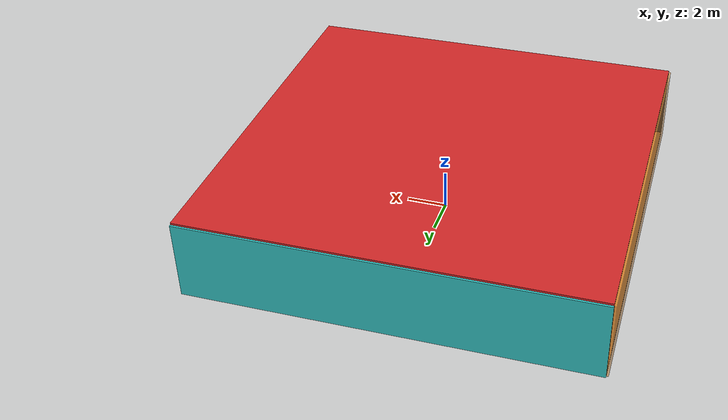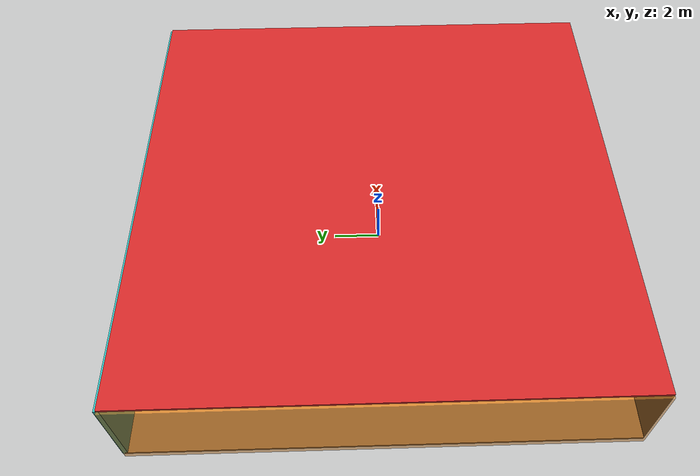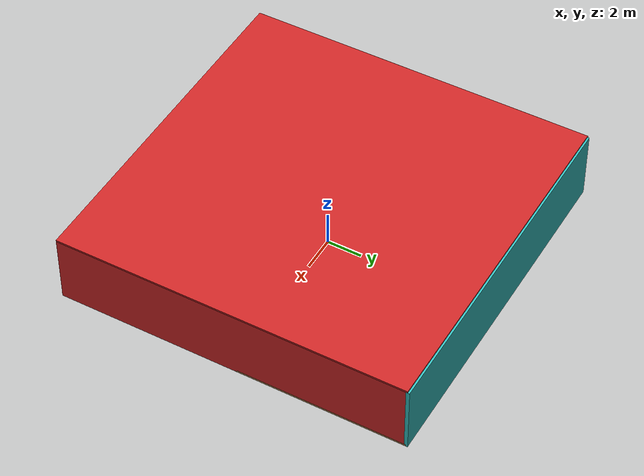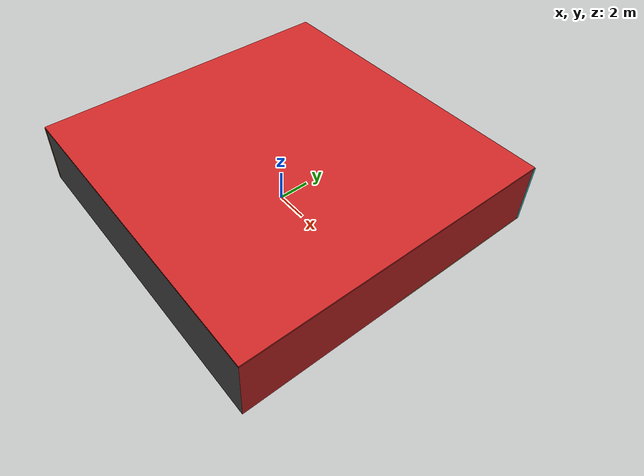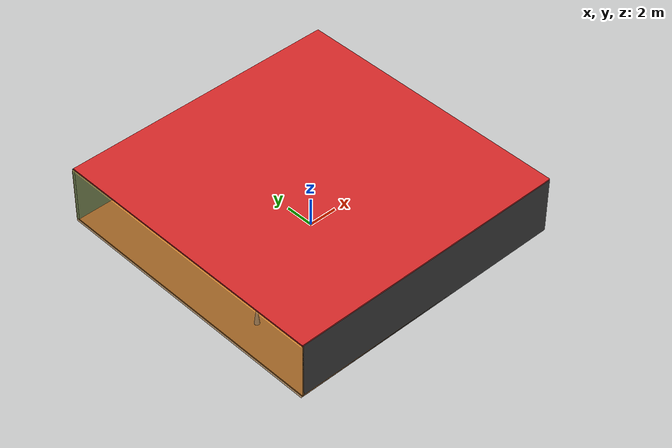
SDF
<sdf version="1.4">
 <world name="default">
  <physics type="ode">
   <max_step_size>0.001</max_step_size>
   <real_time_factor>1</real_time_factor>
   <real_time_update_rate>1000</real_time_update_rate>
   <gravity>0 0 -9.8</gravity>
  </physics>
  <scene><ambient>0.4 0.4 0.4 1</ambient><background>0.7 0.7 0.7 1</background><shadows>1</shadows></scene>
  <model name="Surrounding">
   <static>1</static>
   <link name="Ceiling">
    <collision name="Ceiling_Collision"><geometry><box><size>20 20 0.1</size></box></geometry></collision>
    <visual name="Ceiling_Visual">
     <geometry><box><size>20 20 0.1</size></box></geometry>
     <material>
      <script><uri>file://media/materials/scripts/gazebo.material</uri><name>Gazebo/RedBright</name></script>
     </material>
    </visual>
    <pose>0 0 4.05 0 0 0</pose>
   </link>
   <link name="Wall_South">
    <collision name="Wall_South_Collision">
     <geometry><box><size>20 0 4</size></box></geometry>
     <pose>0 0 2 0 -0 0</pose>
    </collision>
    <visual name="Wall_South_Visual">
     <pose>0 0 2 0 -0 0</pose>
     <geometry><box><size>20 0 4</size></box></geometry>
     <material>
      <script><uri>file://media/materials/scripts/gazebo.material</uri><name>Gazebo/Road</name></script>
     </material>
    </visual>
    <velocity_decay><linear>0</linear><angular>0</angular></velocity_decay>
    <pose>0 -10 0 0 -0 0</pose>
   </link>
   <link name="Wall_East">
    <collision name="Wall_21_Collision">
     <geometry><box><size>20 0 4</size></box></geometry>
     <pose>0 0 2 0 -0 0</pose>
    </collision>
    <visual name="Wall_21_Visual">
     <pose>0 0 2 0 -0 0</pose>
     <geometry><box><size>20 0 4</size></box></geometry>
     <material>
      <script><uri>file://media/materials/scripts/gazebo.material</uri><name>Gazebo/Red</name></script>
     </material>
    </visual>
    <velocity_decay><linear>0</linear><angular>0</angular></velocity_decay>
    <pose>10 0 0 0 -0 1.5708</pose>
   </link>
   <link name="Wall_North">
    <collision name="Wall_22_Collision">
     <geometry><box><size>20 0.2 4</size></box></geometry>
     <pose>0 0 2 0 -0 0</pose>
    </collision>
    <visual name="Wall_22_Visual">
     <pose>0 0 2 0 -0 0</pose>
     <geometry><box><size>20 0.2 4</size></box></geometry>
     <material>
      <script><uri>file://media/materials/scripts/gazebo.material</uri><name>Gazebo/TurquoiseGlow</name></script>
     </material>
    </visual>
    <velocity_decay><linear>0</linear><angular>0</angular></velocity_decay>
    <pose>0 10 0 0 -0 0</pose>
   </link>
   <link name="Wall_West">
    <collision name="Wall_23_Collision">
     <geometry><box><size>20 0.2 4</size></box></geometry>
     <pose>0 0 2 0 -0 0</pose>
    </collision>
    <visual name="Wall_23_Visual">
     <pose>0 0 2 0 -0 0</pose>
     <geometry><box><size>20 0.2 4</size></box></geometry>
     <material>
      <script>
       <uri>file://media/materials/scripts/gazebo.material</uri>
       <name>Gazebo/OrangeTransparent</name>
      </script>
     </material>
    </visual>
    <velocity_decay><linear>0</linear><angular>0</angular></velocity_decay>
    <pose>-10 0 0 0 0 -1.5708</pose>
   </link>
   <link name="Ground_link">
    <collision name="collision">
     <pose>0 0 .05 0 -0 0</pose>
     <geometry><box><size>20 20 0.1</size></box></geometry>
    </collision>
    <visual name="visual">
     <pose>0 0 .05 0 -0 0</pose>
     <geometry><box><size>20 20 0.1</size></box></geometry>
     <material>
      <script><uri>file://media/materials/scripts/gazebo.material</uri><name>Gazebo/WoodFloor</name></script>
     </material>
    </visual>
   </link>
   <static>1</static>
  </model>
  <spherical_coordinates>
   <surface_model>EARTH_WGS84</surface_model>
   <latitude_deg>0</latitude_deg>
   <longitude_deg>0</longitude_deg>
   <elevation>0</elevation>
   <heading_deg>0</heading_deg>
  </spherical_coordinates>
  <light name="lightball_0" type="diffuse">
   <diffuse>0.8 0.8 0.8 1</diffuse>
   <specular>0.2 0.2 0.2 1</specular>
   <attenuation>
    <range>100</range>
    <constant>0.7</constant>
    <linear>0.01</linear>
    <quadratic>0.001</quadratic>
   </attenuation>
   <direction>-0.5 0.1 -0.9</direction>
   <pose>4.42170508515 -7.15668334484 1.85334074489 0 0 0</pose>
  </light>
  <light name="lightball_1" type="diffuse">
   <diffuse>0.8 0.8 0.8 1</diffuse>
   <specular>0.2 0.2 0.2 1</specular>
   <attenuation>
    <range>100</range>
    <constant>0.7</constant>
    <linear>0.01</linear>
    <quadratic>0.001</quadratic>
   </attenuation>
   <direction>-0.5 0.1 -0.9</direction>
   <pose>6.82996722274 -6.86463198756 1.08349639259 0 0 0</pose>
  </light>
  <light name="lightball_2" type="diffuse">
   <diffuse>0.8 0.8 0.8 1</diffuse>
   <specular>0.2 0.2 0.2 1</specular>
   <attenuation>
    <range>100</range>
    <constant>0.7</constant>
    <linear>0.01</linear>
    <quadratic>0.001</quadratic>
   </attenuation>
   <direction>-0.5 0.1 -0.9</direction>
   <pose>-9.09743547104 3.17185064942 2.18860088589 0 0 0</pose>
  </light>
  <light name="lightball_3" type="diffuse">
   <diffuse>0.8 0.8 0.8 1</diffuse>
   <specular>0.2 0.2 0.2 1</specular>
   <attenuation>
    <range>100</range>
    <constant>0.7</constant>
    <linear>0.01</linear>
    <quadratic>0.001</quadratic>
   </attenuation>
   <direction>-0.5 0.1 -0.9</direction>
   <pose>3.1580051111 0.900792661544 1.95018269176 0 0 0</pose>
  </light>
  <light name="lightball_4" type="diffuse">
   <diffuse>0.8 0.8 0.8 1</diffuse>
   <specular>0.2 0.2 0.2 1</specular>
   <attenuation>
    <range>100</range>
    <constant>0.7</constant>
    <linear>0.01</linear>
    <quadratic>0.001</quadratic>
   </attenuation>
   <direction>-0.5 0.1 -0.9</direction>
   <pose>1.90648664646 -3.33186053312 1.33628895608 0 0 0</pose>
  </light>
  <light name="lightball_5" type="diffuse">
   <diffuse>0.8 0.8 0.8 1</diffuse>
   <specular>0.2 0.2 0.2 1</specular>
   <attenuation>
    <range>100</range>
    <constant>0.7</constant>
    <linear>0.01</linear>
    <quadratic>0.001</quadratic>
   </attenuation>
   <direction>-0.5 0.1 -0.9</direction>
   <pose>-8.79081328815 3.21209119369 1.02045965852 0 0 0</pose>
  </light>
  <light name="lightball_6" type="diffuse">
   <diffuse>0.8 0.8 0.8 1</diffuse>
   <specular>0.2 0.2 0.2 1</specular>
   <attenuation>
    <range>100</range>
    <constant>0.7</constant>
    <linear>0.01</linear>
    <quadratic>0.001</quadratic>
   </attenuation>
   <direction>-0.5 0.1 -0.9</direction>
   <pose>-5.79035349661 -5.02768556124 1.50803555469 0 0 0</pose>
  </light>
  <light name="lightball_7" type="diffuse">
   <diffuse>0.8 0.8 0.8 1</diffuse>
   <specular>0.2 0.2 0.2 1</specular>
   <attenuation>
    <range>100</range>
    <constant>0.7</constant>
    <linear>0.01</linear>
    <quadratic>0.001</quadratic>
   </attenuation>
   <direction>-0.5 0.1 -0.9</direction>
   <pose>0.672475016977 -1.55930405798 1.41217216055 0 0 0</pose>
  </light>
  <light name="lightball_8" type="diffuse">
   <diffuse>0.8 0.8 0.8 1</diffuse>
   <specular>0.2 0.2 0.2 1</specular>
   <attenuation>
    <range>100</range>
    <constant>0.7</constant>
    <linear>0.01</linear>
    <quadratic>0.001</quadratic>
   </attenuation>
   <direction>-0.5 0.1 -0.9</direction>
   <pose>8.11084772187 -8.11875498318 2.94044997716 0 0 0</pose>
  </light>
  <light name="lightball_9" type="diffuse">
   <diffuse>0.8 0.8 0.8 1</diffuse>
   <specular>0.2 0.2 0.2 1</specular>
   <attenuation>
    <range>100</range>
    <constant>0.7</constant>
    <linear>0.01</linear>
    <quadratic>0.001</quadratic>
   </attenuation>
   <direction>-0.5 0.1 -0.9</direction>
   <pose>-2.07063308726 -2.59863518923 3.45381164083 0 0 0</pose>
  </light>
  <include>
   <uri>model://construction_cone</uri>
   <pose>-8.05539561074 -4.07416446916 0 0 0 0.199311334117</pose>
  </include>
  <include>
   <uri>model://robocup_3Dsim_goal</uri>
   <pose>-0.99151090642 -4.78835081299 0 0 0 2.27296426278</pose>
  </include>
  <include>
   <uri>model://construction_cone</uri>
   <pose>-2.12572198685 5.2710153536 0 0 0 2.14529488853</pose>
  </include>
  <include>
   <uri>model://construction_cone</uri>
   <pose>1.15874587483 -4.15844965054 0 0 0 3.10576997229</pose>
  </include>
  <include><uri>model://table</uri><pose>1.25238907766 4.04500117823 0 0 0 0.205513994992</pose></include>
  <include><uri>model://cabinet</uri><pose>4.85428284928 7.74249943267 0 0 0 2.64918698378</pose></include>
  <include>
   <uri>model://robocup_3Dsim_goal</uri>
   <pose>7.44077742364 -1.64837885379 0 0 0 1.8380046117</pose>
  </include>
 </world>
</sdf>

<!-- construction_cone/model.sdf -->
<sdf version="1.5">
  <model name="Construction Cone">
    <link name="link">
      <collision name="collision">
        <geometry>
          <mesh>
            <scale>10 10 10</scale>
            <uri>file://isr-testbed/construction_cone/meshes/construction_cone.dae</uri>
          </mesh>
        </geometry>
      </collision>
      <visual name="visual">
        <geometry>
          <mesh>
            <scale>10 10 10</scale>
            <uri>file://isr-testbed/construction_cone/meshes/construction_cone.dae</uri>
          </mesh>
        </geometry>
      </visual>
    </link>
  </model>
</sdf>

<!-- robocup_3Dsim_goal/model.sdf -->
<sdf version="1.5">
  <model name="robocup_3d_goal">
    <static>true</static>
    <link name="left_post">
      <pose>0 1.05 0.45 0 0 0</pose>
      <collision name="collision">
        <geometry>
          <cylinder>
            <radius>0.05</radius>
            <length>0.9</length>
          </cylinder>
        </geometry>
      </collision>
      <visual name="visual">
        <geometry>
          <cylinder>
            <radius>0.05</radius>
            <length>0.9</length>
          </cylinder>
        </geometry>
        <material>
          <script>
            <uri>file://media/materials/scripts/gazebo.material</uri>
            <name>Gazebo/ZincYellow</name>
          </script>
        </material>
      </visual>
    </link>
    <link name="left_support_horiz_lower">
      <pose>0.30 1.05 0.01 0 0 0</pose>
      <collision name="collision">
        <geometry>
          <box>
            <size>0.50 0.02 0.02</size>
          </box>
        </geometry>
      </collision>
      <visual name="visual">
        <geometry>
          <box>
            <size>0.50 0.02 0.02</size>
          </box>
        </geometry>
        <material>
          <script>
            <uri>file://media/materials/scripts/gazebo.material</uri>
            <name>Gazebo/White</name>
          </script>
        </material>
      </visual>
    </link>
    <link name="left_support_horiz_upper">
      <pose>0.30 1.05 0.79 0 0 0</pose>
      <collision name="collision">
        <geometry>
          <box>
            <size>0.50 0.02 0.02</size>
          </box>
        </geometry>
      </collision>
      <visual name="visual">
        <geometry>
          <box>
            <size>0.50 0.02 0.02</size>
          </box>
        </geometry>
        <material>
          <script>
            <uri>file://media/materials/scripts/gazebo.material</uri>
            <name>Gazebo/White</name>
          </script>
        </material>
      </visual>
    </link>
    <link name="left_support_vertical">
      <pose>0.56 1.05 0.4 0 1.5708 0</pose>
      <collision name="collision">
        <geometry>
          <box>
            <size>0.80 0.02 0.02</size>
          </box>
        </geometry>
      </collision>
      <visual name="visual">
        <geometry>
          <box>
            <size>0.80 0.02 0.02</size>
          </box>
        </geometry>
        <material>
          <script>
            <uri>file://media/materials/scripts/gazebo.material</uri>
            <name>Gazebo/White</name>
          </script>
        </material>
      </visual>
    </link>
    <link name="right_support_horiz_lower">
      <pose>0.30 -1.05 0.01 0 0 0</pose>
      <collision name="collision">
        <geometry>
          <box>
            <size>0.50 0.02 0.02</size>
          </box>
        </geometry>
      </collision>
      <visual name="visual">
        <geometry>
          <box>
            <size>0.50 0.02 0.02</size>
          </box>
        </geometry>
        <material>
          <script>
            <uri>file://media/materials/scripts/gazebo.material</uri>
            <name>Gazebo/White</name>
          </script>
        </material>
      </visual>
    </link>
    <link name="right_support_horiz_upper">
      <pose>0.30 -1.05 0.79 0 0 0</pose>
      <collision name="collision">
        <geometry>
          <box>
            <size>0.50 0.02 0.02</size>
          </box>
        </geometry>
      </collision>
      <visual name="visual">
        <geometry>
          <box>
            <size>0.50 0.02 0.02</size>
          </box>
        </geometry>
        <material>
          <script>
            <uri>file://media/materials/scripts/gazebo.material</uri>
            <name>Gazebo/White</name>
          </script>
        </material>
      </visual>
    </link>
    <link name="right_support_vertical">
      <pose>0.56 -1.05 0.4 0 1.5708 0</pose>
      <collision name="collision">
        <geometry>
          <box>
            <size>0.80 0.02 0.02</size>
          </box>
        </geometry>
      </collision>
      <visual name="visual">
        <geometry>
          <box>
            <size>0.80 0.02 0.02</size>
          </box>
        </geometry>
        <material>
          <script>
            <uri>file://media/materials/scripts/gazebo.material</uri>
            <name>Gazebo/White</name>
          </script>
        </material>
      </visual>
    </link>
    <link name="center_support_horiz_lower">
      <pose>0.56 0 0.01 0 1.5708 0</pose>
      <collision name="collision">
        <geometry>
          <box>
            <size>0.02 2.08 0.02</size>
          </box>
        </geometry>
      </collision>
      <visual name="visual">
        <geometry>
          <box>
            <size>0.02 2.08 0.02</size>
          </box>
        </geometry>
        <material>
          <script>
            <uri>file://media/materials/scripts/gazebo.material</uri>
            <name>Gazebo/White</name>
          </script>
        </material>
      </visual>
    </link>
    <link name="center_support_horiz_upper">
      <pose>0.56 0 0.79 0 1.5708 0</pose>
      <collision name="collision">
        <geometry>
          <box>
            <size>0.02 2.08 0.02</size>
          </box>
        </geometry>
      </collision>
      <visual name="visual">
        <geometry>
          <box>
            <size>0.02 2.08 0.02</size>
          </box>
        </geometry>
        <material>
          <script>
            <uri>file://media/materials/scripts/gazebo.material</uri>
            <name>Gazebo/White</name>
          </script>
        </material>
      </visual>
    </link>
    <link name="right_post">
      <pose>0 -1.05 0.45 0 0 0</pose>
      <collision name="collision">
        <geometry>
          <cylinder>
            <radius>0.05</radius>
            <length>0.9</length>
          </cylinder>
        </geometry>
      </collision>
      <visual name="visual">
        <geometry>
          <cylinder>
            <radius>0.05</radius>
            <length>0.9</length>
          </cylinder>
        </geometry>
        <material>
          <script>
            <uri>file://media/materials/scripts/gazebo.material</uri>
            <name>Gazebo/ZincYellow</name>
          </script>
        </material>
      </visual>
    </link>
    <link name="crossbar">
      <pose>0 0 0.85 1.57 1.57 0</pose>
      <collision name="collision">
        <geometry>
          <cylinder>
            <radius>0.05</radius>
            <length>2.0</length>
          </cylinder>
        </geometry>
      </collision>
      <visual name="visual">
        <geometry>
          <cylinder>
            <radius>0.05</radius>
            <length>2.0</length>
          </cylinder>
        </geometry>
        <material>
          <script>
            <uri>file://media/materials/scripts/gazebo.material</uri>
            <name>Gazebo/ZincYellow</name>
          </script>
        </material>
      </visual>
    </link>
    <link name="center_net">
      <pose>0.56 0 0.40 0 0 0</pose>
      <collision name="collision">
        <geometry>
          <box>
            <size>0.01 2.1 0.80</size>
          </box>
        </geometry>
      </collision>
      <visual name="visual">
        <geometry>
          <box>
            <size>0.01 2.1 0.80</size>
          </box>
        </geometry>
        <material>
          <script>
            <uri>model://../model_source/models/robocup09_spl_field/materials/scripts/</uri>
            <uri>model://../model_source/models/robocup09_spl_field/materials/textures/</uri>
            <name>RoboCup/Net</name>
          </script>
        </material>
      </visual>
    </link>
    <link name="left_net">
      <pose>0.30 1.05 0.40 0 0 0</pose>
      <collision name="collision">
        <geometry>
          <box>
            <size>0.50 0.01 0.76</size>
          </box>
        </geometry>
      </collision>
      <visual name="visual">
        <geometry>
          <box>
            <size>0.50 0.01 0.76</size>
          </box>
        </geometry>
        <material>
          <script>
            <uri>model://../model_source/models/robocup09_spl_field/materials/scripts/</uri>
            <uri>model://../model_source/models/robocup09_spl_field/materials/textures/</uri>
            <name>RoboCup/Net</name>
          </script>
        </material>
      </visual>
    </link>
    <link name="right_net">
      <pose>0.30 -1.05 0.40 0 0 0</pose>
      <collision name="collision">
        <geometry>
          <box>
            <size>0.50 0.01 0.76</size>
          </box>
        </geometry>
      </collision>
      <visual name="visual">
        <geometry>
          <box>
            <size>0.50 0.01 0.76</size>
          </box>
        </geometry>
        <material>
          <script>
            <uri>model://../model_source/models/robocup09_spl_field/materials/scripts/</uri>
            <uri>model://../model_source/models/robocup09_spl_field/materials/textures/</uri>
            <name>RoboCup/Net</name>
          </script>
        </material>
      </visual>
    </link>
  </model>
</sdf>

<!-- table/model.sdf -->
<sdf version="1.5">
  <model name="table">
    <static>true</static>
    <link name="link">
      <collision name="surface">
        <pose>0 0 1.0 0 0 0</pose>
        <geometry>
          <box>
            <size>1.5 0.8 0.03</size>
          </box>
        </geometry>
        <surface>
          <friction>
            <ode>
              <mu>0.6</mu>
              <mu2>0.6</mu2>
            </ode>
          </friction>
        </surface>
      </collision>
      <visual name="visual1">
        <pose>0 0 1.0 0 0 0</pose>
        <geometry>
          <box>
            <size>1.5 0.8 0.03</size>
          </box>
        </geometry>
        <material>
          <script>
            <uri>model://media/materials/scripts/gazebo.material</uri>
            <name>Gazebo/Wood</name>
          </script>
        </material>
      </visual>
      <collision name="front_left_leg">
        <pose>0.68 0.38 0.5 0 0 0</pose>
        <geometry>
          <cylinder>
            <radius>0.02</radius>
            <length>1.0</length>
          </cylinder>
        </geometry>
      </collision>
      <visual name="front_left_leg">
        <pose>0.68 0.38 0.5 0 0 0</pose>
        <geometry>
          <cylinder>
            <radius>0.02</radius>
            <length>1.0</length>
          </cylinder>
        </geometry>
        <material>
          <script>
            <uri>model://media/materials/scripts/gazebo.material</uri>
            <name>Gazebo/Grey</name>
          </script>
        </material>
      </visual>
      <collision name="front_right_leg">
        <pose>0.68 -0.38 0.5 0 0 0</pose>
        <geometry>
          <cylinder>
            <radius>0.02</radius>
            <length>1.0</length>
          </cylinder>
        </geometry>
      </collision>
      <visual name="front_right_leg">
        <pose>0.68 -0.38 0.5 0 0 0</pose>
        <geometry>
          <cylinder>
            <radius>0.02</radius>
            <length>1.0</length>
          </cylinder>
        </geometry>
        <material>
          <script>
            <uri>model://media/materials/scripts/gazebo.material</uri>
            <name>Gazebo/Grey</name>
          </script>
        </material>
      </visual>
      <collision name="back_right_leg">
        <pose>-0.68 -0.38 0.5 0 0 0</pose>
        <geometry>
          <cylinder>
            <radius>0.02</radius>
            <length>1.0</length>
          </cylinder>
        </geometry>
      </collision>
      <visual name="back_right_leg">
        <pose>-0.68 -0.38 0.5 0 0 0</pose>
        <geometry>
          <cylinder>
            <radius>0.02</radius>
            <length>1.0</length>
          </cylinder>
        </geometry>
        <material>
          <script>
            <uri>model://media/materials/scripts/gazebo.material</uri>
            <name>Gazebo/Grey</name>
          </script>
        </material>
      </visual>
      <collision name="back_left_leg">
        <pose>-0.68 0.38 0.5 0 0 0</pose>
        <geometry>
          <cylinder>
            <radius>0.02</radius>
            <length>1.0</length>
          </cylinder>
        </geometry>
      </collision>
      <visual name="back_left_leg">
        <pose>-0.68 0.38 0.5 0 0 0</pose>
        <geometry>
          <cylinder>
            <radius>0.02</radius>
            <length>1.0</length>
          </cylinder>
        </geometry>
        <material>
          <script>
            <uri>model://media/materials/scripts/gazebo.material</uri>
            <name>Gazebo/Grey</name>
          </script>
        </material>
      </visual>
    </link>
  </model>
</sdf>

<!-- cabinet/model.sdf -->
<sdf version="1.5">
  <model name="cabinet">
    <static>true</static>
    <link name="cabinet_bottom_plate">
      <inertial>
        <pose>0 0 -1 0 0 0</pose>
        <inertia>
          <ixx>2.050000</ixx>
          <ixy>0</ixy>
          <ixz>0</ixz>
          <iyy>2.050000</iyy>
          <iyz>0</iyz>
          <izz>2.050000</izz>
        </inertia>
        <mass>25.000000</mass>
      </inertial>
      <collision name="cabinet_bottom_plate_geom">
        <pose>0 0 0.010000 0 0 0</pose>
        <geometry>
          <box>
            <size>0.450000 0.450000 0.020000</size>
          </box>
        </geometry>
      </collision>
      <visual name="cabinet_bottom_plate_geom_visual">
        <pose>0 0 0.010000 0 0 0</pose>
        <geometry>
          <box>
            <size>0.450000 0.450000 0.020000</size>
          </box>
        </geometry>
        <material>
          <script>
            <uri>model://media/materials/scripts/gazebo.material</uri>
            <name>Gazebo/Wood</name>
          </script>
        </material>
      </visual>
      <collision name="cabinet_bottom_plate_geom_cabinet_back_plate">
        <pose>0.235000 0 0.510000 0 0 0</pose>
        <geometry>
          <box>
            <size>0.020000 0.450000 1.020000</size>
          </box>
        </geometry>
      </collision>
      <visual name="cabinet_bottom_plate_geom_cabinet_back_plate_visual">
        <pose>0.235000 0 0.510000 0 0 0</pose>
        <geometry>
          <box>
            <size>0.020000 0.450000 1.020000</size>
          </box>
        </geometry>
        <material>
          <script>
            <uri>model://media/materials/scripts/gazebo.material</uri>
            <name>Gazebo/Wood</name>
          </script>
        </material>
      </visual>
      <collision name="cabinet_bottom_plate_geom_cabinet_left_plate">
        <pose>0 0.235000 0.510000 0 0 0</pose>
        <geometry>
          <box>
            <size>0.450000 0.020000 1.020000</size>
          </box>
        </geometry>
      </collision>
      <visual name="cabinet_bottom_plate_geom_cabinet_left_plate_visual">
        <pose>0 0.235000 0.510000 0 0 0</pose>
        <geometry>
          <box>
            <size>0.450000 0.020000 1.020000</size>
          </box>
        </geometry>
        <material>
          <script>
            <uri>model://media/materials/scripts/gazebo.material</uri>
            <name>Gazebo/Wood</name>
          </script>
        </material>
      </visual>
      <collision name="cabinet_bottom_plate_geom_cabinet_middle_plate">
        <pose>0 0 0.510000 0 0 0</pose>
        <geometry>
          <box>
            <size>0.450000 0.450000 0.020000</size>
          </box>
        </geometry>
      </collision>
      <visual name="cabinet_bottom_plate_geom_cabinet_middle_plate_visual">
        <pose>0 0 0.510000 0 0 0</pose>
        <geometry>
          <box>
            <size>0.450000 0.450000 0.020000</size>
          </box>
        </geometry>
        <material>
          <script>
            <uri>model://media/materials/scripts/gazebo.material</uri>
            <name>Gazebo/Wood</name>
          </script>
        </material>
      </visual>
      <collision name="cabinet_bottom_plate_geom_cabinet_right_plate">
        <pose>0 -0.235000 0.510000 0 0 0</pose>
        <geometry>
          <box>
            <size>0.450000 0.020000 1.020000</size>
          </box>
        </geometry>
      </collision>
      <visual name="cabinet_bottom_plate_geom_cabinet_right_plate_visual">
        <pose>0 -0.235000 0.510000 0 0 0</pose>
        <geometry>
          <box>
            <size>0.450000 0.020000 1.020000</size>
          </box>
        </geometry>
        <material>
          <script>
            <uri>model://media/materials/scripts/gazebo.material</uri>
            <name>Gazebo/Wood</name>
          </script>
        </material>
      </visual>
      <collision name="cabinet_bottom_plate_geom_cabinet_top_plate">
        <pose>0 0 1.010000 0 0 0</pose>
        <geometry>
          <box>
            <size>0.450000 0.450000 0.020000</size>
          </box>
        </geometry>
      </collision>
      <visual name="cabinet_bottom_plate_geom_cabinet_top_plate_visual">
        <pose>0 0 1.010000 0 0 0</pose>
        <geometry>
          <box>
            <size>0.450000 0.450000 0.020000</size>
          </box>
        </geometry>
        <material>
          <script>
            <uri>model://media/materials/scripts/gazebo.material</uri>
            <name>Gazebo/Wood</name>
          </script>
        </material>
      </visual>
    </link>
  </model>
</sdf>
